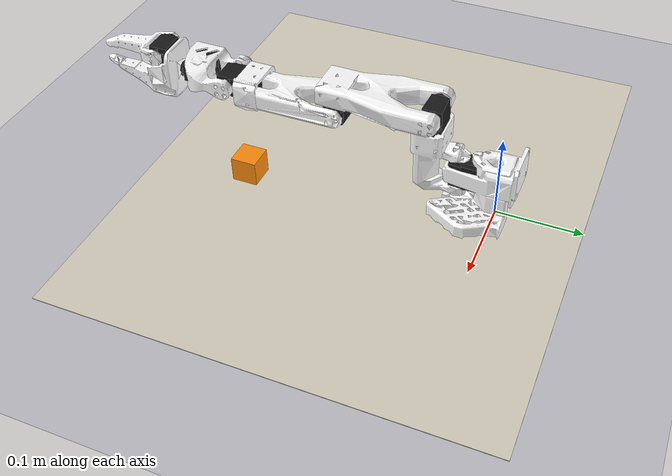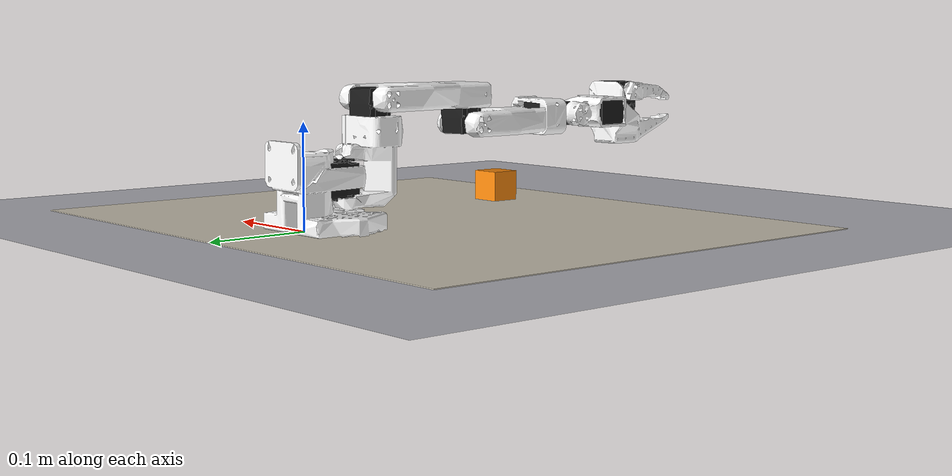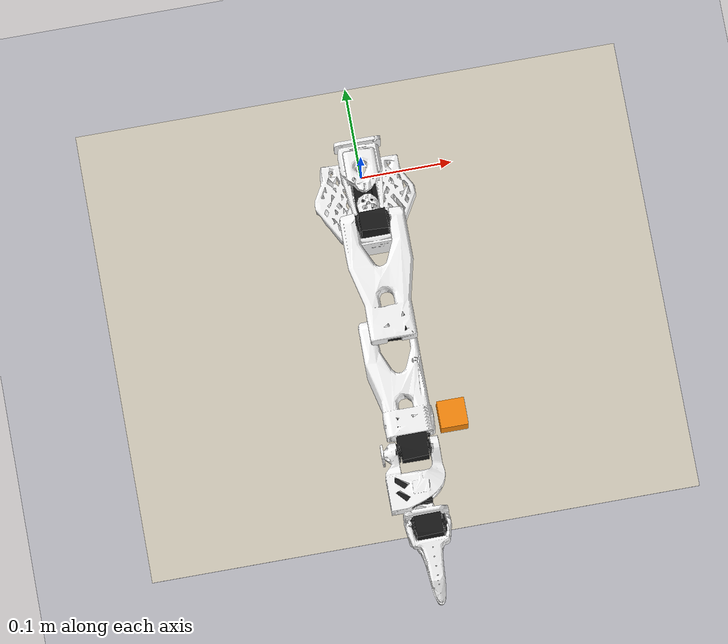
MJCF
<mujoco model="so101_pi05_scene">
  <compiler angle="radian" autolimits="true"/>

  <include file="../dependencies/mujoco_menagerie/trs_so_arm100/so_arm100.xml"/>

  <!-- Viewer opening pose: 3/4 rear-left of arm, framing arm + tabletop + orange cube. -->
  <statistic center="0.02 -0.15 0.08" extent="0.55"/>

  <visual>
    <headlight diffuse="0.55 0.55 0.55" ambient="0.4 0.4 0.4" specular="0.05 0.05 0.05"/>
    <global azimuth="210" elevation="-22"/>
  </visual>

  <asset>
    <texture type="skybox" builtin="flat" rgb1="0.9 0.9 0.92" rgb2="0.9 0.9 0.92" width="256" height="256"/>
    <material name="table_mat" rgba="0.85 0.82 0.75 1" specular="0.1" shininess="0.2"/>
    <material name="floor_mat" rgba="0.75 0.75 0.78 1"/>
  </asset>

  <worldbody>
    <light pos="0.0 -0.3 1.3" dir="0 0 -1" directional="true" diffuse="0.55 0.55 0.5"/>
    <light pos="0.4 -0.2 0.8" dir="-0.3 -0.2 -0.8" diffuse="0.25 0.25 0.22"/>

    <geom name="floor" type="plane" size="3 3 0.05" material="floor_mat"/>

    <!-- Light tabletop covering the workspace; SO-ARM base sits on it at origin. -->
    <body name="table" pos="0 -0.15 -0.005">
      <geom type="box" size="0.3 0.25 0.005" material="table_mat"/>
    </body>

    <!-- Orange cube target (matches "orange cube" task in the fine-tune name). -->
    <body name="orange_cube" pos="0.05 -0.28 0.02">
      <joint type="free"/>
      <geom type="box" size="0.015 0.015 0.015" rgba="1.0 0.55 0.05 1" mass="0.04"/>
    </body>

    <!-- 3rd-person camera mimicking the SO-101 phone-camera setup used by hobbyist datasets. -->
    <camera name="vla_view" pos="0.0 -0.45 0.30" mode="targetbody" target="orange_cube" fovy="55"/>
    <!-- top_cam: alias used by the pi05_minimax_vla pipeline for the primary view. -->
    <camera name="top_cam" pos="0.0 -0.45 0.30" mode="targetbody" target="orange_cube" fovy="55"/>
  </worldbody>

  <keyframe>
    <!-- nq = 6 arm + 7 free joint (cube) = 13. nu = 6. -->
    <key name="pi05_home"
         qpos="0 -1.57 1.57 1.57 -1.57 0  0.05 -0.28 0.02 1 0 0 0"
         ctrl="0 -1.57 1.57 1.57 -1.57 0"/>
  </keyframe>
</mujoco>

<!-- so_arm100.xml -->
<mujoco model="so_arm100">
  <compiler angle="radian" meshdir="assets/"/>

  <option cone="elliptic" impratio="10"/>

  <asset>
    <material name="white" rgba="1 1 1 1"/>
    <material name="black" rgba="0.1 0.1 0.1 1"/>

    <mesh name="Base" file="Base.stl"/>
    <mesh name="Base_Motor" file="Base_Motor.stl"/>
    <mesh name="Rotation_Pitch" file="Rotation_Pitch.stl"/>
    <mesh name="Rotation_Pitch_Motor" file="Rotation_Pitch_Motor.stl"/>
    <mesh name="Upper_Arm" file="Upper_Arm.stl"/>
    <mesh name="Upper_Arm_Motor" file="Upper_Arm_Motor.stl"/>
    <mesh name="Lower_Arm" file="Lower_Arm.stl"/>
    <mesh name="Lower_Arm_Motor" file="Lower_Arm_Motor.stl"/>
    <mesh name="Wrist_Pitch_Roll" file="Wrist_Pitch_Roll.stl"/>
    <mesh name="Wrist_Pitch_Roll_Motor" file="Wrist_Pitch_Roll_Motor.stl"/>
    <mesh name="Fixed_Jaw" file="Fixed_Jaw.stl"/>
    <mesh name="Fixed_Jaw_Motor" file="Fixed_Jaw_Motor.stl"/>
    <mesh name="Fixed_Jaw_Collision_1" file="Fixed_Jaw_Collision_1.stl"/>
    <mesh name="Fixed_Jaw_Collision_2" file="Fixed_Jaw_Collision_2.stl"/>
    <mesh name="Moving_Jaw" file="Moving_Jaw.stl"/>
    <mesh name="Moving_Jaw_Collision_1" file="Moving_Jaw_Collision_1.stl"/>
    <mesh name="Moving_Jaw_Collision_2" file="Moving_Jaw_Collision_2.stl"/>
    <mesh name="Moving_Jaw_Collision_3" file="Moving_Jaw_Collision_3.stl"/>
  </asset>

  <default>
    <default class="so_arm100">
      <joint frictionloss="0.1" armature="0.1"/>
      <position kp="50" dampratio="1" forcerange="-3.5 3.5"/>
      <default class="Rotation">
        <joint axis="0 1 0" range="-1.92 1.92"/>
      </default>
      <default class="Pitch">
        <joint axis="1 0 0" range="-3.32 0.174"/>
      </default>
      <default class="Elbow">
        <joint axis="1 0 0" range="-0.174 3.14"/>
      </default>
      <default class="Wrist_Pitch">
        <joint axis="1 0 0" range="-1.66 1.66"/>
      </default>
      <default class="Wrist_Roll">
        <joint axis="0 1 0" range="-2.79 2.79"/>
      </default>
      <default class="Jaw">
        <joint axis="0 0 1" range="-0.174 1.75"/>
      </default>
      <default class="visual">
        <geom type="mesh" contype="0" conaffinity="0" density="0" group="2" material="white"/>
        <default class="motor_visual">
          <geom material="black"/>
        </default>
      </default>
      <default class="collision">
        <geom group="3" type="mesh" material="white"/>
        <default class="finger_collision">
          <geom type="box" solimp="2 1 0.01" solref="0.01 1" friction="1 0.005 0.0001"/>
        </default>
      </default>
    </default>
  </default>

  <worldbody>
    <body name="Base" childclass="so_arm100">
      <geom type="mesh" mesh="Base" class="visual"/>
      <geom type="mesh" mesh="Base_Motor" class="motor_visual"/>
      <geom type="mesh" mesh="Base" class="collision"/>
      <body name="Rotation_Pitch" pos="0 -0.0452 0.0165" quat="0.707105 0.707108 0 0">
        <inertial pos="-9.07886e-05 0.0590972 0.031089" quat="0.363978 0.441169 -0.623108 0.533504" mass="0.119226"
          diaginertia="5.94278e-05 5.89975e-05 3.13712e-05"/>
        <joint name="Rotation" class="Rotation"/>
        <geom type="mesh" mesh="Rotation_Pitch" class="visual"/>
        <geom type="mesh" mesh="Rotation_Pitch_Motor" class="motor_visual"/>
        <geom type="mesh" mesh="Rotation_Pitch" class="collision"/>
        <body name="Upper_Arm" pos="0 0.1025 0.0306" euler="1.57079 0 0">
          <inertial pos="-1.72052e-05 0.0701802 0.00310545" quat="0.50104 0.498994 -0.493562 0.50632" mass="0.162409"
            diaginertia="0.000213312 0.000167164 7.01522e-05"/>
          <joint name="Pitch" class="Pitch"/>
          <geom type="mesh" mesh="Upper_Arm" class="visual"/>
          <geom type="mesh" mesh="Upper_Arm_Motor" class="motor_visual"/>
          <geom type="mesh" mesh="Upper_Arm" class="collision"/>
          <body name="Lower_Arm" pos="0 0.11257 0.028" euler="-1.57079 0 0">
            <inertial pos="-0.00339604 0.00137796 0.0768007" quat="0.701995 0.0787996 0.0645626 0.704859"
              mass="0.147968" diaginertia="0.000138803 0.000107748 4.84242e-05"/>
            <joint name="Elbow" class="Elbow"/>
            <geom type="mesh" mesh="Lower_Arm" class="visual"/>
            <geom type="mesh" mesh="Lower_Arm_Motor" class="motor_visual"/>
            <geom type="mesh" mesh="Lower_Arm" class="collision"/>
            <body name="Wrist_Pitch_Roll" pos="0 0.0052 0.1349" euler="-1.57079 0 0">
              <inertial pos="-0.00852653 -0.0352279 -2.34622e-05" quat="-0.0522806 0.705235 0.0549524 0.704905"
                mass="0.0661321" diaginertia="3.45403e-05 2.39041e-05 1.94704e-05"/>
              <joint name="Wrist_Pitch" class="Wrist_Pitch"/>
              <geom type="mesh" mesh="Wrist_Pitch_Roll" class="visual"/>
              <geom type="mesh" mesh="Wrist_Pitch_Roll_Motor" class="motor_visual"/>
              <geom type="mesh" mesh="Wrist_Pitch_Roll" class="collision"/>
              <body name="Fixed_Jaw" pos="0 -0.0601 0" euler="0 1.57079 0">
                <inertial pos="0.00552377 -0.0280167 0.000483583" quat="0.41836 0.620891 -0.350644 0.562599"
                  mass="0.0929859" diaginertia="5.03136e-05 4.64098e-05 2.72961e-05"/>
                <joint name="Wrist_Roll" class="Wrist_Roll"/>
                <geom type="mesh" mesh="Fixed_Jaw" class="visual"/>
                <geom type="mesh" mesh="Fixed_Jaw_Motor" class="motor_visual"/>
                <geom type="mesh" mesh="Fixed_Jaw_Collision_1" class="collision"/>
                <geom type="mesh" mesh="Fixed_Jaw_Collision_2" class="collision"/>
                <geom class="finger_collision" name="fixed_jaw_pad_1" size="0.001 0.005 0.004" pos="0.0089 -0.1014 0"/>
                <geom class="finger_collision" name="fixed_jaw_pad_2" size="0.001 0.005 0.006" pos="0.0109 -0.0914 0"/>
                <geom class="finger_collision" name="fixed_jaw_pad_3" size="0.001 0.01 0.007" pos="0.0126 -0.0768 0"/>
                <geom class="finger_collision" name="fixed_jaw_pad_4" size="0.001 0.01 0.008" pos="0.0143 -0.0572 0"/>

                <!-- FPV / Wrist Camera -->
                <camera name="wrist_cam" pos="0 -0.05 0" quat="0.707 0.707 0 0" fovy="60"/>

                <body name="Moving_Jaw" pos="-0.0202 -0.0244 0" quat="1.34924e-11 -3.67321e-06 1 -3.67321e-06">
                  <inertial pos="-0.00161745 -0.0303473 0.000449646" quat="0.696562 0.716737 -0.0239844 -0.0227026"
                    mass="0.0202444" diaginertia="1.11265e-05 8.99651e-06 2.99548e-06"/>
                  <joint name="Jaw" class="Jaw"/>
                  <geom type="mesh" mesh="Moving_Jaw" class="visual"/>
                  <geom type="mesh" mesh="Moving_Jaw_Collision_1" class="collision"/>
                  <geom type="mesh" mesh="Moving_Jaw_Collision_2" class="collision"/>
                  <geom type="mesh" mesh="Moving_Jaw_Collision_3" class="collision"/>
                  <geom class="finger_collision" name="moving_jaw_pad_1" size="0.001 0.005 0.004" pos="-0.0113 -0.077 0"/>
                  <geom class="finger_collision" name="moving_jaw_pad_2" size="0.001 0.005 0.006" pos="-0.0093 -0.067 0"/>
                  <geom class="finger_collision" name="moving_jaw_pad_3" size="0.001 0.01 0.006" pos="-0.0073 -0.055 0"/>
                  <geom class="finger_collision" name="moving_jaw_pad_4" size="0.001 0.01 0.008" pos="-0.0073 -0.035 0"/>
                </body>
              </body>
            </body>
          </body>
        </body>
      </body>
    </body>
  </worldbody>

  <actuator>
    <position class="Rotation" name="Rotation" joint="Rotation" inheritrange="1"/>
    <position class="Pitch" name="Pitch" joint="Pitch" inheritrange="1"/>
    <position class="Elbow" name="Elbow" joint="Elbow" inheritrange="1"/>
    <position class="Wrist_Pitch" name="Wrist_Pitch" joint="Wrist_Pitch" inheritrange="1"/>
    <position class="Wrist_Roll" name="Wrist_Roll" joint="Wrist_Roll" inheritrange="1"/>
    <position class="Jaw" name="Jaw" joint="Jaw" inheritrange="1"/>
  </actuator>

  <contact>
    <exclude body1="Base" body2="Rotation_Pitch"/>
  </contact>

  <keyframe>
    <key name="home" qpos="0 -1.57 1.57 1.57 -1.57 0" ctrl="0 -1.57 1.57 1.57 -1.57 0"/>
    <key name="rest" qpos="0 -3.32 3.11 1.18 0 -0.174" ctrl="0 -3.32 3.11 1.18 0 -0.174"/>
  </keyframe>
</mujoco>
